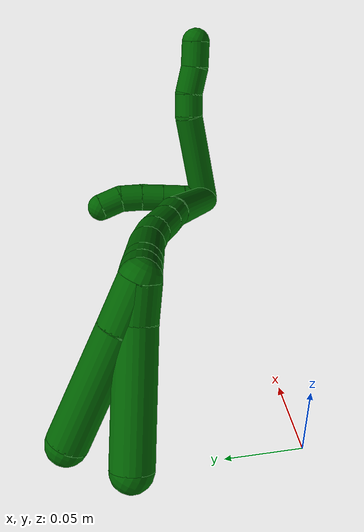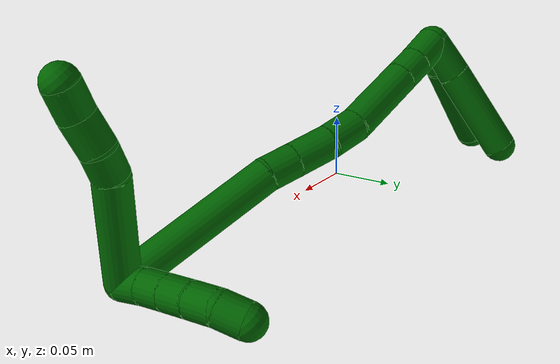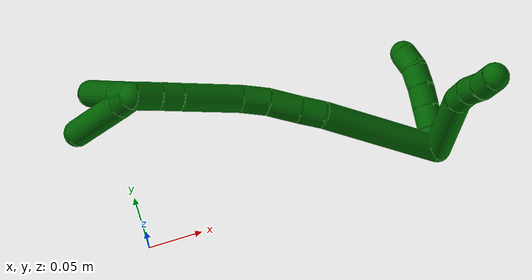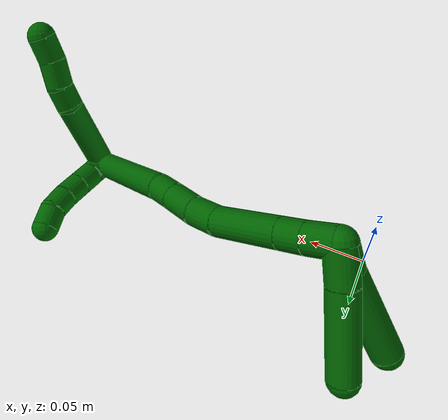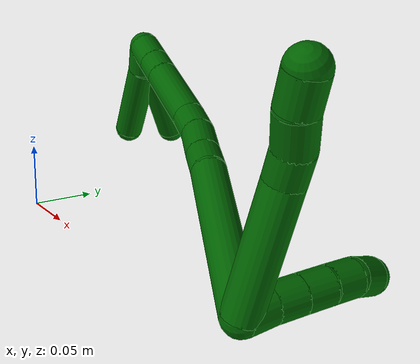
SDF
<sdf version="1.7">
 <world name="default">
  <model name="6">
   <static>0</static>
   <link name="6">
    <collision name="collision-cylinder-e_1_2_8">
     <pose>-0.026639 -0.00562 -0.031164 2.96318 -0.699381 -2.66056</pose>
     <geometry><cylinder><radius>0.0125</radius><length>0.082763</length></cylinder></geometry>
     <surface>
      <friction><ode><mu>1.16</mu><mu2>1.16</mu2><slip1>0</slip1><slip2>0</slip2></ode></friction>
      <contact><ode><kp>1e+06</kp><kd>1</kd><max_vel>0</max_vel><min_depth>0.001</min_depth></ode></contact>
     </surface>
    </collision>
    <visual name="visual-cylinder-e_1_2_8">
     <pose>-0.026639 -0.00562 -0.031164 2.96318 -0.699381 -2.66056</pose>
     <geometry><cylinder><radius>0.0125</radius><length>0.082763</length></cylinder></geometry>
     <material><ambient>0 0.392157 0.003922 1</ambient></material>
    </visual>
    <collision name="collision-cylinder-e_2_8_9">
     <pose>-0.057462 -0.013346 -0.071393 2.9133 -0.42253 -2.15975</pose>
     <geometry><cylinder><radius>0.0125</radius><length>0.020406</length></cylinder></geometry>
     <surface>
      <friction><ode><mu>1.16</mu><mu2>1.16</mu2><slip1>0</slip1><slip2>0</slip2></ode></friction>
      <contact><ode><kp>1e+06</kp><kd>1</kd><max_vel>0</max_vel><min_depth>0.001</min_depth></ode></contact>
     </surface>
    </collision>
    <visual name="visual-cylinder-e_2_8_9">
     <pose>-0.057462 -0.013346 -0.071393 2.9133 -0.42253 -2.15975</pose>
     <geometry><cylinder><radius>0.0125</radius><length>0.020406</length></cylinder></geometry>
     <material><ambient>0 0.392157 0.003922 1</ambient></material>
    </visual>
    <collision name="collision-cylinder-e_3_9_10">
     <pose>-0.064631 -0.016344 -0.092194 3.06573 -0.248361 -2.55128</pose>
     <geometry><cylinder><radius>0.0125</radius><length>0.024287</length></cylinder></geometry>
     <surface>
      <friction><ode><mu>1.16</mu><mu2>1.16</mu2><slip1>0</slip1><slip2>0</slip2></ode></friction>
      <contact><ode><kp>1e+06</kp><kd>1</kd><max_vel>0</max_vel><min_depth>0.001</min_depth></ode></contact>
     </surface>
    </collision>
    <visual name="visual-cylinder-e_3_9_10">
     <pose>-0.064631 -0.016344 -0.092194 3.06573 -0.248361 -2.55128</pose>
     <geometry><cylinder><radius>0.0125</radius><length>0.024287</length></cylinder></geometry>
     <material><ambient>0 0.392157 0.003922 1</ambient></material>
    </visual>
    <collision name="collision-cylinder-e_4_10_6">
     <pose>-0.071952 -0.019221 -0.114145 2.94967 -0.394776 -2.24442</pose>
     <geometry><cylinder><radius>0.0125</radius><length>0.022544</length></cylinder></geometry>
     <surface>
      <friction><ode><mu>1.16</mu><mu2>1.16</mu2><slip1>0</slip1><slip2>0</slip2></ode></friction>
      <contact><ode><kp>1e+06</kp><kd>1</kd><max_vel>0</max_vel><min_depth>0.001</min_depth></ode></contact>
     </surface>
    </collision>
    <visual name="visual-cylinder-e_4_10_6">
     <pose>-0.071952 -0.019221 -0.114145 2.94967 -0.394776 -2.24442</pose>
     <geometry><cylinder><radius>0.0125</radius><length>0.022544</length></cylinder></geometry>
     <material><ambient>0 0.392157 0.003922 1</ambient></material>
    </visual>
    <collision name="collision-cylinder-e_1_2_11">
     <pose>-0.007959 -0.004522 0.004026 0.843341 -0.920484 -0.437643</pose>
     <geometry><cylinder><radius>0.0125</radius><length>0.02</length></cylinder></geometry>
     <surface>
      <friction><ode><mu>1.16</mu><mu2>1.16</mu2><slip1>0</slip1><slip2>0</slip2></ode></friction>
      <contact><ode><kp>1e+06</kp><kd>1</kd><max_vel>0</max_vel><min_depth>0.001</min_depth></ode></contact>
     </surface>
    </collision>
    <visual name="visual-cylinder-e_1_2_11">
     <pose>-0.007959 -0.004522 0.004026 0.843341 -0.920484 -0.437643</pose>
     <geometry><cylinder><radius>0.0125</radius><length>0.02</length></cylinder></geometry>
     <material><ambient>0 0.392157 0.003922 1</ambient></material>
    </visual>
    <collision name="collision-cylinder-e_2_11_12">
     <pose>-0.023446 -0.0142 0.012144 0.899881 -0.852276 -0.431673</pose>
     <geometry><cylinder><radius>0.0125</radius><length>0.02</length></cylinder></geometry>
     <surface>
      <friction><ode><mu>1.16</mu><mu2>1.16</mu2><slip1>0</slip1><slip2>0</slip2></ode></friction>
      <contact><ode><kp>1e+06</kp><kd>1</kd><max_vel>0</max_vel><min_depth>0.001</min_depth></ode></contact>
     </surface>
    </collision>
    <visual name="visual-cylinder-e_2_11_12">
     <pose>-0.023446 -0.0142 0.012144 0.899881 -0.852276 -0.431673</pose>
     <geometry><cylinder><radius>0.0125</radius><length>0.02</length></cylinder></geometry>
     <material><ambient>0 0.392157 0.003922 1</ambient></material>
    </visual>
    <collision name="collision-cylinder-e_3_12_13">
     <pose>-0.038459 -0.024513 0.020404 0.891248 -0.845943 -0.423588</pose>
     <geometry><cylinder><radius>0.0125</radius><length>0.02</length></cylinder></geometry>
     <surface>
      <friction><ode><mu>1.16</mu><mu2>1.16</mu2><slip1>0</slip1><slip2>0</slip2></ode></friction>
      <contact><ode><kp>1e+06</kp><kd>1</kd><max_vel>0</max_vel><min_depth>0.001</min_depth></ode></contact>
     </surface>
    </collision>
    <visual name="visual-cylinder-e_3_12_13">
     <pose>-0.038459 -0.024513 0.020404 0.891248 -0.845943 -0.423588</pose>
     <geometry><cylinder><radius>0.0125</radius><length>0.02</length></cylinder></geometry>
     <material><ambient>0 0.392157 0.003922 1</ambient></material>
    </visual>
    <collision name="collision-cylinder-e_4_13_14">
     <pose>-0.053335 -0.034223 0.029538 0.741863 -0.831459 -0.340083</pose>
     <geometry><cylinder><radius>0.0125</radius><length>0.02</length></cylinder></geometry>
     <surface>
      <friction><ode><mu>1.16</mu><mu2>1.16</mu2><slip1>0</slip1><slip2>0</slip2></ode></friction>
      <contact><ode><kp>1e+06</kp><kd>1</kd><max_vel>0</max_vel><min_depth>0.001</min_depth></ode></contact>
     </surface>
    </collision>
    <visual name="visual-cylinder-e_4_13_14">
     <pose>-0.053335 -0.034223 0.029538 0.741863 -0.831459 -0.340083</pose>
     <geometry><cylinder><radius>0.0125</radius><length>0.02</length></cylinder></geometry>
     <material><ambient>0 0.392157 0.003922 1</ambient></material>
    </visual>
    <collision name="collision-cylinder-e_5_14_5">
     <pose>-0.066643 -0.041573 0.042064 0.354457 -0.633449 -0.117274</pose>
     <geometry><cylinder><radius>0.0125</radius><length>0.02</length></cylinder></geometry>
     <surface>
      <friction><ode><mu>1.16</mu><mu2>1.16</mu2><slip1>0</slip1><slip2>0</slip2></ode></friction>
      <contact><ode><kp>1e+06</kp><kd>1</kd><max_vel>0</max_vel><min_depth>0.001</min_depth></ode></contact>
     </surface>
    </collision>
    <visual name="visual-cylinder-e_5_14_5">
     <pose>-0.066643 -0.041573 0.042064 0.354457 -0.633449 -0.117274</pose>
     <geometry><cylinder><radius>0.0125</radius><length>0.02</length></cylinder></geometry>
     <material><ambient>0 0.392157 0.003922 1</ambient></material>
    </visual>
    <collision name="collision-cylinder-e_1_2_15">
     <pose>-0.046413 0.036126 0.008585 -1.33748 -0.896038 0.725913</pose>
     <geometry><cylinder><radius>0.0125</radius><length>0.118877</length></cylinder></geometry>
     <surface>
      <friction><ode><mu>1.16</mu><mu2>1.16</mu2><slip1>0</slip1><slip2>0</slip2></ode></friction>
      <contact><ode><kp>1e+06</kp><kd>1</kd><max_vel>0</max_vel><min_depth>0.001</min_depth></ode></contact>
     </surface>
    </collision>
    <visual name="visual-cylinder-e_1_2_15">
     <pose>-0.046413 0.036126 0.008585 -1.33748 -0.896038 0.725913</pose>
     <geometry><cylinder><radius>0.0125</radius><length>0.118877</length></cylinder></geometry>
     <material><ambient>0 0.392157 0.003922 1</ambient></material>
    </visual>
    <collision name="collision-cylinder-e_2_15_16">
     <pose>-0.100871 0.079418 0.020746 -1.10796 -0.787596 0.503161</pose>
     <geometry><cylinder><radius>0.0125</radius><length>0.022703</length></cylinder></geometry>
     <surface>
      <friction><ode><mu>1.16</mu><mu2>1.16</mu2><slip1>0</slip1><slip2>0</slip2></ode></friction>
      <contact><ode><kp>1e+06</kp><kd>1</kd><max_vel>0</max_vel><min_depth>0.001</min_depth></ode></contact>
     </surface>
    </collision>
    <visual name="visual-cylinder-e_2_15_16">
     <pose>-0.100871 0.079418 0.020746 -1.10796 -0.787596 0.503161</pose>
     <geometry><cylinder><radius>0.0125</radius><length>0.022703</length></cylinder></geometry>
     <material><ambient>0 0.392157 0.003922 1</ambient></material>
    </visual>
    <collision name="collision-cylinder-e_3_16_17">
     <pose>-0.1198 0.095648 0.028859 -1.10673 -0.821003 0.525295</pose>
     <geometry><cylinder><radius>0.0125</radius><length>0.029746</length></cylinder></geometry>
     <surface>
      <friction><ode><mu>1.16</mu><mu2>1.16</mu2><slip1>0</slip1><slip2>0</slip2></ode></friction>
      <contact><ode><kp>1e+06</kp><kd>1</kd><max_vel>0</max_vel><min_depth>0.001</min_depth></ode></contact>
     </surface>
    </collision>
    <visual name="visual-cylinder-e_3_16_17">
     <pose>-0.1198 0.095648 0.028859 -1.10673 -0.821003 0.525295</pose>
     <geometry><cylinder><radius>0.0125</radius><length>0.029746</length></cylinder></geometry>
     <material><ambient>0 0.392157 0.003922 1</ambient></material>
    </visual>
    <collision name="collision-cylinder-e_4_17_18">
     <pose>-0.139076 0.113952 0.036573 -1.23966 -0.709619 0.516971</pose>
     <geometry><cylinder><radius>0.0125</radius><length>0.02576</length></cylinder></geometry>
     <surface>
      <friction><ode><mu>1.16</mu><mu2>1.16</mu2><slip1>0</slip1><slip2>0</slip2></ode></friction>
      <contact><ode><kp>1e+06</kp><kd>1</kd><max_vel>0</max_vel><min_depth>0.001</min_depth></ode></contact>
     </surface>
    </collision>
    <visual name="visual-cylinder-e_4_17_18">
     <pose>-0.139076 0.113952 0.036573 -1.23966 -0.709619 0.516971</pose>
     <geometry><cylinder><radius>0.0125</radius><length>0.02576</length></cylinder></geometry>
     <material><ambient>0 0.392157 0.003922 1</ambient></material>
    </visual>
    <collision name="collision-cylinder-e_5_18_19">
     <pose>-0.165372 0.145859 0.041777 -1.48158 -0.66662 0.6133</pose>
     <geometry><cylinder><radius>0.0125</radius><length>0.057912</length></cylinder></geometry>
     <surface>
      <friction><ode><mu>1.16</mu><mu2>1.16</mu2><slip1>0</slip1><slip2>0</slip2></ode></friction>
      <contact><ode><kp>1e+06</kp><kd>1</kd><max_vel>0</max_vel><min_depth>0.001</min_depth></ode></contact>
     </surface>
    </collision>
    <visual name="visual-cylinder-e_5_18_19">
     <pose>-0.165372 0.145859 0.041777 -1.48158 -0.66662 0.6133</pose>
     <geometry><cylinder><radius>0.0125</radius><length>0.057912</length></cylinder></geometry>
     <material><ambient>0 0.392157 0.003922 1</ambient></material>
    </visual>
    <collision name="collision-cylinder-e_6_19_20">
     <pose>-0.18962 0.176495 0.044515 -1.48194 -0.670331 0.616966</pose>
     <geometry><cylinder><radius>0.0125</radius><length>0.020421</length></cylinder></geometry>
     <surface>
      <friction><ode><mu>1.16</mu><mu2>1.16</mu2><slip1>0</slip1><slip2>0</slip2></ode></friction>
      <contact><ode><kp>1e+06</kp><kd>1</kd><max_vel>0</max_vel><min_depth>0.001</min_depth></ode></contact>
     </surface>
    </collision>
    <visual name="visual-cylinder-e_6_19_20">
     <pose>-0.18962 0.176495 0.044515 -1.48194 -0.670331 0.616966</pose>
     <geometry><cylinder><radius>0.0125</radius><length>0.020421</length></cylinder></geometry>
     <material><ambient>0 0.392157 0.003922 1</ambient></material>
    </visual>
    <collision name="collision-cylinder-e_7_20_1">
     <pose>-0.203502 0.194161 0.04566 -1.52587 -0.660346 0.633268</pose>
     <geometry><cylinder><radius>0.0125</radius><length>0.024581</length></cylinder></geometry>
     <surface>
      <friction><ode><mu>1.16</mu><mu2>1.16</mu2><slip1>0</slip1><slip2>0</slip2></ode></friction>
      <contact><ode><kp>1e+06</kp><kd>1</kd><max_vel>0</max_vel><min_depth>0.001</min_depth></ode></contact>
     </surface>
    </collision>
    <visual name="visual-cylinder-e_7_20_1">
     <pose>-0.203502 0.194161 0.04566 -1.52587 -0.660346 0.633268</pose>
     <geometry><cylinder><radius>0.0125</radius><length>0.024581</length></cylinder></geometry>
     <material><ambient>0 0.392157 0.003922 1</ambient></material>
    </visual>
    <collision name="collision-cylinder-e_1_1_21">
     <pose>-0.210153 0.203999 0.060958 -0.009488 0.059629 -0.000283</pose>
     <geometry><cylinder><radius>0.0125</radius><length>0.029777</length></cylinder></geometry>
     <surface>
      <friction><ode><mu>1.16</mu><mu2>1.16</mu2><slip1>0</slip1><slip2>0</slip2></ode></friction>
      <contact><ode><kp>1e+06</kp><kd>1</kd><max_vel>0</max_vel><min_depth>0.001</min_depth></ode></contact>
     </surface>
    </collision>
    <visual name="visual-cylinder-e_1_1_21">
     <pose>-0.210153 0.203999 0.060958 -0.009488 0.059629 -0.000283</pose>
     <geometry><cylinder><radius>0.0125</radius><length>0.029777</length></cylinder></geometry>
     <material><ambient>0 0.392157 0.003922 1</ambient></material>
    </visual>
    <collision name="collision-cylinder-e_2_21_4">
     <pose>-0.206296 0.202884 0.110782 0.035894 0.084707 0.001521</pose>
     <geometry><cylinder><radius>0.0125</radius><length>0.070223</length></cylinder></geometry>
     <surface>
      <friction><ode><mu>1.16</mu><mu2>1.16</mu2><slip1>0</slip1><slip2>0</slip2></ode></friction>
      <contact><ode><kp>1e+06</kp><kd>1</kd><max_vel>0</max_vel><min_depth>0.001</min_depth></ode></contact>
     </surface>
    </collision>
    <visual name="visual-cylinder-e_2_21_4">
     <pose>-0.206296 0.202884 0.110782 0.035894 0.084707 0.001521</pose>
     <geometry><cylinder><radius>0.0125</radius><length>0.070223</length></cylinder></geometry>
     <material><ambient>0 0.392157 0.003922 1</ambient></material>
    </visual>
    <collision name="collision-cylinder-e_1_1_22">
     <pose>-0.207562 0.206239 0.056903 -0.216854 0.304611 -0.033414</pose>
     <geometry><cylinder><radius>0.0125</radius><length>0.023199</length></cylinder></geometry>
     <surface>
      <friction><ode><mu>1.16</mu><mu2>1.16</mu2><slip1>0</slip1><slip2>0</slip2></ode></friction>
      <contact><ode><kp>1e+06</kp><kd>1</kd><max_vel>0</max_vel><min_depth>0.001</min_depth></ode></contact>
     </surface>
    </collision>
    <visual name="visual-cylinder-e_1_1_22">
     <pose>-0.207562 0.206239 0.056903 -0.216854 0.304611 -0.033414</pose>
     <geometry><cylinder><radius>0.0125</radius><length>0.023199</length></cylinder></geometry>
     <material><ambient>0 0.392157 0.003922 1</ambient></material>
    </visual>
    <collision name="collision-cylinder-e_2_22_3">
     <pose>-0.19461 0.222382 0.102285 -0.378807 0.24926 -0.048023</pose>
     <geometry><cylinder><radius>0.0125</radius><length>0.076801</length></cylinder></geometry>
     <surface>
      <friction><ode><mu>1.16</mu><mu2>1.16</mu2><slip1>0</slip1><slip2>0</slip2></ode></friction>
      <contact><ode><kp>1e+06</kp><kd>1</kd><max_vel>0</max_vel><min_depth>0.001</min_depth></ode></contact>
     </surface>
    </collision>
    <visual name="visual-cylinder-e_2_22_3">
     <pose>-0.19461 0.222382 0.102285 -0.378807 0.24926 -0.048023</pose>
     <geometry><cylinder><radius>0.0125</radius><length>0.076801</length></cylinder></geometry>
     <material><ambient>0 0.392157 0.003922 1</ambient></material>
    </visual>
    <collision name="collision-sphere-3">
     <pose>-0.185137 0.236144 0.13686 0 -0 0</pose>
     <geometry><sphere><radius>0.0125</radius></sphere></geometry>
     <surface>
      <friction><ode><mu>1.16</mu><mu2>1.16</mu2><slip1>0</slip1><slip2>0</slip2></ode></friction>
      <contact><ode><kp>1e+06</kp><kd>1</kd><max_vel>0</max_vel><min_depth>0.001</min_depth></ode></contact>
     </surface>
    </collision>
    <visual name="visual-sphere-3">
     <pose>-0.185137 0.236144 0.13686 0 -0 0</pose>
     <geometry><sphere><radius>0.0125</radius></sphere></geometry>
     <material><ambient>0 0.392157 0.003922 1</ambient></material>
    </visual>
    <collision name="collision-sphere-22">
     <pose>-0.204083 0.20862 0.067709 0 -0 0</pose>
     <geometry><sphere><radius>0.0125</radius></sphere></geometry>
     <surface>
      <friction><ode><mu>1.16</mu><mu2>1.16</mu2><slip1>0</slip1><slip2>0</slip2></ode></friction>
      <contact><ode><kp>1e+06</kp><kd>1</kd><max_vel>0</max_vel><min_depth>0.001</min_depth></ode></contact>
     </surface>
    </collision>
    <visual name="visual-sphere-22">
     <pose>-0.204083 0.20862 0.067709 0 -0 0</pose>
     <geometry><sphere><radius>0.0125</radius></sphere></geometry>
     <material><ambient>0 0.392157 0.003922 1</ambient></material>
    </visual>
    <collision name="collision-sphere-4">
     <pose>-0.203325 0.201629 0.145745 0 -0 0</pose>
     <geometry><sphere><radius>0.0125</radius></sphere></geometry>
     <surface>
      <friction><ode><mu>1.16</mu><mu2>1.16</mu2><slip1>0</slip1><slip2>0</slip2></ode></friction>
      <contact><ode><kp>1e+06</kp><kd>1</kd><max_vel>0</max_vel><min_depth>0.001</min_depth></ode></contact>
     </surface>
    </collision>
    <visual name="visual-sphere-4">
     <pose>-0.203325 0.201629 0.145745 0 -0 0</pose>
     <geometry><sphere><radius>0.0125</radius></sphere></geometry>
     <material><ambient>0 0.392157 0.003922 1</ambient></material>
    </visual>
    <collision name="collision-sphere-21">
     <pose>-0.209266 0.20414 0.075819 0 -0 0</pose>
     <geometry><sphere><radius>0.0125</radius></sphere></geometry>
     <surface>
      <friction><ode><mu>1.16</mu><mu2>1.16</mu2><slip1>0</slip1><slip2>0</slip2></ode></friction>
      <contact><ode><kp>1e+06</kp><kd>1</kd><max_vel>0</max_vel><min_depth>0.001</min_depth></ode></contact>
     </surface>
    </collision>
    <visual name="visual-sphere-21">
     <pose>-0.209266 0.20414 0.075819 0 -0 0</pose>
     <geometry><sphere><radius>0.0125</radius></sphere></geometry>
     <material><ambient>0 0.392157 0.003922 1</ambient></material>
    </visual>
    <collision name="collision-sphere-1">
     <pose>-0.211041 0.203858 0.046096 0 -0 0</pose>
     <geometry><sphere><radius>0.0125</radius></sphere></geometry>
     <surface>
      <friction><ode><mu>1.16</mu><mu2>1.16</mu2><slip1>0</slip1><slip2>0</slip2></ode></friction>
      <contact><ode><kp>1e+06</kp><kd>1</kd><max_vel>0</max_vel><min_depth>0.001</min_depth></ode></contact>
     </surface>
    </collision>
    <visual name="visual-sphere-1">
     <pose>-0.211041 0.203858 0.046096 0 -0 0</pose>
     <geometry><sphere><radius>0.0125</radius></sphere></geometry>
     <material><ambient>0 0.392157 0.003922 1</ambient></material>
    </visual>
    <collision name="collision-sphere-11">
     <pose>-0.015918 -0.009044 0.008052 0 -0 0</pose>
     <geometry><sphere><radius>0.0125</radius></sphere></geometry>
     <surface>
      <friction><ode><mu>1.16</mu><mu2>1.16</mu2><slip1>0</slip1><slip2>0</slip2></ode></friction>
      <contact><ode><kp>1e+06</kp><kd>1</kd><max_vel>0</max_vel><min_depth>0.001</min_depth></ode></contact>
     </surface>
    </collision>
    <visual name="visual-sphere-11">
     <pose>-0.015918 -0.009044 0.008052 0 -0 0</pose>
     <geometry><sphere><radius>0.0125</radius></sphere></geometry>
     <material><ambient>0 0.392157 0.003922 1</ambient></material>
    </visual>
    <collision name="collision-sphere-6">
     <pose>-0.076287 -0.021205 -0.124359 0 -0 0</pose>
     <geometry><sphere><radius>0.0125</radius></sphere></geometry>
     <surface>
      <friction><ode><mu>1.16</mu><mu2>1.16</mu2><slip1>0</slip1><slip2>0</slip2></ode></friction>
      <contact><ode><kp>1e+06</kp><kd>1</kd><max_vel>0</max_vel><min_depth>0.001</min_depth></ode></contact>
     </surface>
    </collision>
    <visual name="visual-sphere-6">
     <pose>-0.076287 -0.021205 -0.124359 0 -0 0</pose>
     <geometry><sphere><radius>0.0125</radius></sphere></geometry>
     <material><ambient>0 0.392157 0.003922 1</ambient></material>
    </visual>
    <collision name="collision-sphere-10">
     <pose>-0.067616 -0.017236 -0.103931 0 -0 0</pose>
     <geometry><sphere><radius>0.0125</radius></sphere></geometry>
     <surface>
      <friction><ode><mu>1.16</mu><mu2>1.16</mu2><slip1>0</slip1><slip2>0</slip2></ode></friction>
      <contact><ode><kp>1e+06</kp><kd>1</kd><max_vel>0</max_vel><min_depth>0.001</min_depth></ode></contact>
     </surface>
    </collision>
    <visual name="visual-sphere-10">
     <pose>-0.067616 -0.017236 -0.103931 0 -0 0</pose>
     <geometry><sphere><radius>0.0125</radius></sphere></geometry>
     <material><ambient>0 0.392157 0.003922 1</ambient></material>
    </visual>
    <collision name="collision-sphere-9">
     <pose>-0.061646 -0.015452 -0.080457 0 -0 0</pose>
     <geometry><sphere><radius>0.0125</radius></sphere></geometry>
     <surface>
      <friction><ode><mu>1.16</mu><mu2>1.16</mu2><slip1>0</slip1><slip2>0</slip2></ode></friction>
      <contact><ode><kp>1e+06</kp><kd>1</kd><max_vel>0</max_vel><min_depth>0.001</min_depth></ode></contact>
     </surface>
    </collision>
    <visual name="visual-sphere-9">
     <pose>-0.061646 -0.015452 -0.080457 0 -0 0</pose>
     <geometry><sphere><radius>0.0125</radius></sphere></geometry>
     <material><ambient>0 0.392157 0.003922 1</ambient></material>
    </visual>
    <collision name="collision-sphere-2">
     <geometry><sphere><radius>0.0125</radius></sphere></geometry>
     <surface>
      <friction><ode><mu>1.16</mu><mu2>1.16</mu2><slip1>0</slip1><slip2>0</slip2></ode></friction>
      <contact><ode><kp>1e+06</kp><kd>1</kd><max_vel>0</max_vel><min_depth>0.001</min_depth></ode></contact>
     </surface>
    </collision>
    <visual name="visual-sphere-2">
     <geometry><sphere><radius>0.0125</radius></sphere></geometry>
     <material><ambient>0 0.392157 0.003922 1</ambient></material>
    </visual>
    <collision name="collision-sphere-19">
     <pose>-0.183277 0.168525 0.043805 0 -0 0</pose>
     <geometry><sphere><radius>0.0125</radius></sphere></geometry>
     <surface>
      <friction><ode><mu>1.16</mu><mu2>1.16</mu2><slip1>0</slip1><slip2>0</slip2></ode></friction>
      <contact><ode><kp>1e+06</kp><kd>1</kd><max_vel>0</max_vel><min_depth>0.001</min_depth></ode></contact>
     </surface>
    </collision>
    <visual name="visual-sphere-19">
     <pose>-0.183277 0.168525 0.043805 0 -0 0</pose>
     <geometry><sphere><radius>0.0125</radius></sphere></geometry>
     <material><ambient>0 0.392157 0.003922 1</ambient></material>
    </visual>
    <collision name="collision-sphere-8">
     <pose>-0.053278 -0.011239 -0.062329 0 -0 0</pose>
     <geometry><sphere><radius>0.0125</radius></sphere></geometry>
     <surface>
      <friction><ode><mu>1.16</mu><mu2>1.16</mu2><slip1>0</slip1><slip2>0</slip2></ode></friction>
      <contact><ode><kp>1e+06</kp><kd>1</kd><max_vel>0</max_vel><min_depth>0.001</min_depth></ode></contact>
     </surface>
    </collision>
    <visual name="visual-sphere-8">
     <pose>-0.053278 -0.011239 -0.062329 0 -0 0</pose>
     <geometry><sphere><radius>0.0125</radius></sphere></geometry>
     <material><ambient>0 0.392157 0.003922 1</ambient></material>
    </visual>
    <collision name="collision-sphere-12">
     <pose>-0.030973 -0.019355 0.016237 0 -0 0</pose>
     <geometry><sphere><radius>0.0125</radius></sphere></geometry>
     <surface>
      <friction><ode><mu>1.16</mu><mu2>1.16</mu2><slip1>0</slip1><slip2>0</slip2></ode></friction>
      <contact><ode><kp>1e+06</kp><kd>1</kd><max_vel>0</max_vel><min_depth>0.001</min_depth></ode></contact>
     </surface>
    </collision>
    <visual name="visual-sphere-12">
     <pose>-0.030973 -0.019355 0.016237 0 -0 0</pose>
     <geometry><sphere><radius>0.0125</radius></sphere></geometry>
     <material><ambient>0 0.392157 0.003922 1</ambient></material>
    </visual>
    <collision name="collision-sphere-13">
     <pose>-0.045945 -0.02967 0.02457 0 -0 0</pose>
     <geometry><sphere><radius>0.0125</radius></sphere></geometry>
     <surface>
      <friction><ode><mu>1.16</mu><mu2>1.16</mu2><slip1>0</slip1><slip2>0</slip2></ode></friction>
      <contact><ode><kp>1e+06</kp><kd>1</kd><max_vel>0</max_vel><min_depth>0.001</min_depth></ode></contact>
     </surface>
    </collision>
    <visual name="visual-sphere-13">
     <pose>-0.045945 -0.02967 0.02457 0 -0 0</pose>
     <geometry><sphere><radius>0.0125</radius></sphere></geometry>
     <material><ambient>0 0.392157 0.003922 1</ambient></material>
    </visual>
    <collision name="collision-sphere-14">
     <pose>-0.060724 -0.038775 0.034505 0 -0 0</pose>
     <geometry><sphere><radius>0.0125</radius></sphere></geometry>
     <surface>
      <friction><ode><mu>1.16</mu><mu2>1.16</mu2><slip1>0</slip1><slip2>0</slip2></ode></friction>
      <contact><ode><kp>1e+06</kp><kd>1</kd><max_vel>0</max_vel><min_depth>0.001</min_depth></ode></contact>
     </surface>
    </collision>
    <visual name="visual-sphere-14">
     <pose>-0.060724 -0.038775 0.034505 0 -0 0</pose>
     <geometry><sphere><radius>0.0125</radius></sphere></geometry>
     <material><ambient>0 0.392157 0.003922 1</ambient></material>
    </visual>
    <collision name="collision-sphere-5">
     <pose>-0.072562 -0.04437 0.049623 0 -0 0</pose>
     <geometry><sphere><radius>0.0125</radius></sphere></geometry>
     <surface>
      <friction><ode><mu>1.16</mu><mu2>1.16</mu2><slip1>0</slip1><slip2>0</slip2></ode></friction>
      <contact><ode><kp>1e+06</kp><kd>1</kd><max_vel>0</max_vel><min_depth>0.001</min_depth></ode></contact>
     </surface>
    </collision>
    <visual name="visual-sphere-5">
     <pose>-0.072562 -0.04437 0.049623 0 -0 0</pose>
     <geometry><sphere><radius>0.0125</radius></sphere></geometry>
     <material><ambient>0 0.392157 0.003922 1</ambient></material>
    </visual>
    <collision name="collision-sphere-15">
     <pose>-0.092826 0.072251 0.01717 0 -0 0</pose>
     <geometry><sphere><radius>0.0125</radius></sphere></geometry>
     <surface>
      <friction><ode><mu>1.16</mu><mu2>1.16</mu2><slip1>0</slip1><slip2>0</slip2></ode></friction>
      <contact><ode><kp>1e+06</kp><kd>1</kd><max_vel>0</max_vel><min_depth>0.001</min_depth></ode></contact>
     </surface>
    </collision>
    <visual name="visual-sphere-15">
     <pose>-0.092826 0.072251 0.01717 0 -0 0</pose>
     <geometry><sphere><radius>0.0125</radius></sphere></geometry>
     <material><ambient>0 0.392157 0.003922 1</ambient></material>
    </visual>
    <collision name="collision-sphere-16">
     <pose>-0.108915 0.086585 0.024323 0 -0 0</pose>
     <geometry><sphere><radius>0.0125</radius></sphere></geometry>
     <surface>
      <friction><ode><mu>1.16</mu><mu2>1.16</mu2><slip1>0</slip1><slip2>0</slip2></ode></friction>
      <contact><ode><kp>1e+06</kp><kd>1</kd><max_vel>0</max_vel><min_depth>0.001</min_depth></ode></contact>
     </surface>
    </collision>
    <visual name="visual-sphere-16">
     <pose>-0.108915 0.086585 0.024323 0 -0 0</pose>
     <geometry><sphere><radius>0.0125</radius></sphere></geometry>
     <material><ambient>0 0.392157 0.003922 1</ambient></material>
    </visual>
    <collision name="collision-sphere-17">
     <pose>-0.130684 0.104712 0.033396 0 -0 0</pose>
     <geometry><sphere><radius>0.0125</radius></sphere></geometry>
     <surface>
      <friction><ode><mu>1.16</mu><mu2>1.16</mu2><slip1>0</slip1><slip2>0</slip2></ode></friction>
      <contact><ode><kp>1e+06</kp><kd>1</kd><max_vel>0</max_vel><min_depth>0.001</min_depth></ode></contact>
     </surface>
    </collision>
    <visual name="visual-sphere-17">
     <pose>-0.130684 0.104712 0.033396 0 -0 0</pose>
     <geometry><sphere><radius>0.0125</radius></sphere></geometry>
     <material><ambient>0 0.392157 0.003922 1</ambient></material>
    </visual>
    <collision name="collision-sphere-18">
     <pose>-0.147468 0.123192 0.039749 0 -0 0</pose>
     <geometry><sphere><radius>0.0125</radius></sphere></geometry>
     <surface>
      <friction><ode><mu>1.16</mu><mu2>1.16</mu2><slip1>0</slip1><slip2>0</slip2></ode></friction>
      <contact><ode><kp>1e+06</kp><kd>1</kd><max_vel>0</max_vel><min_depth>0.001</min_depth></ode></contact>
     </surface>
    </collision>
    <visual name="visual-sphere-18">
     <pose>-0.147468 0.123192 0.039749 0 -0 0</pose>
     <geometry><sphere><radius>0.0125</radius></sphere></geometry>
     <material><ambient>0 0.392157 0.003922 1</ambient></material>
    </visual>
    <collision name="collision-sphere-20">
     <pose>-0.195963 0.184464 0.045225 0 -0 0</pose>
     <geometry><sphere><radius>0.0125</radius></sphere></geometry>
     <surface>
      <friction><ode><mu>1.16</mu><mu2>1.16</mu2><slip1>0</slip1><slip2>0</slip2></ode></friction>
      <contact><ode><kp>1e+06</kp><kd>1</kd><max_vel>0</max_vel><min_depth>0.001</min_depth></ode></contact>
     </surface>
    </collision>
    <visual name="visual-sphere-20">
     <pose>-0.195963 0.184464 0.045225 0 -0 0</pose>
     <geometry><sphere><radius>0.0125</radius></sphere></geometry>
     <material><ambient>0 0.392157 0.003922 1</ambient></material>
    </visual>
    <inertial>
     <pose>-0.112369 0.089252 0.026438 0 -0 0</pose>
     <mass>0.75</mass>
     <inertia>
      <ixx>0.000152</ixx>
      <ixy>0</ixy>
      <ixz>0</ixz>
      <iyy>0.000305</iyy>
      <iyz>0</iyz>
      <izz>5.7e-05</izz>
     </inertia>
    </inertial>
   </link>
   <pose>0.278932 0.00678 0.012203 2.98592 0.656965 -1.20564</pose>
  </model>
 </world>
</sdf>
